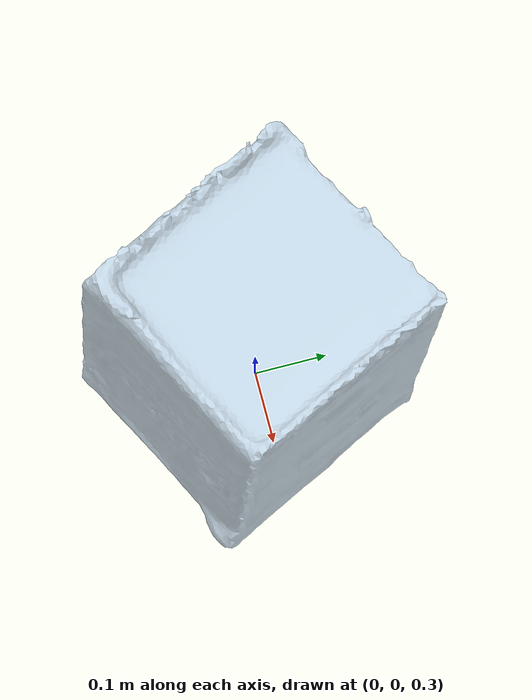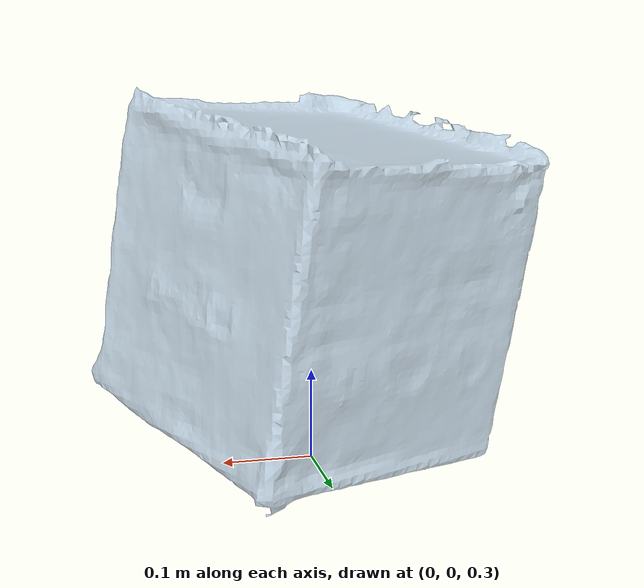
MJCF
<mujoco model="largebox">

	<asset>
		<!-- Mesh asset for the large box; ensure largebox.obj is in the same directory -->
		<mesh name="largebox_mesh" file="../../../../OmniRetarget_Dataset/models/largebox/largebox.obj" scale="1 1 1"/>

		<!-- Simple translucent material -->
		<material name="box_material" rgba="0.7 0.8 0.9 0.7"/>
	</asset>

	<worldbody>
		<body name="largebox_link" pos="0 0 0.5">
			<!-- Free joint so the object can be pushed by the robot -->
			<joint type="free" name="largebox_freejoint"/>

			<!-- Realistic inertial properties for a large box -->
			<inertial pos="0 0 0" mass="2.0" diaginertia="0.1 0.1 0.1"/>

			<!-- Collision/visual geometry using the mesh -->
			<geom name="largebox_geom"
						type="mesh"
						mesh="largebox_mesh"
						material="box_material"
						friction="0.8 0.5 0.01"
						contype="1"
						conaffinity="1"
						solimp="0.9 0.95 0.001"
						solref="0.02 1"/>
		</body>
	</worldbody>
</mujoco>
